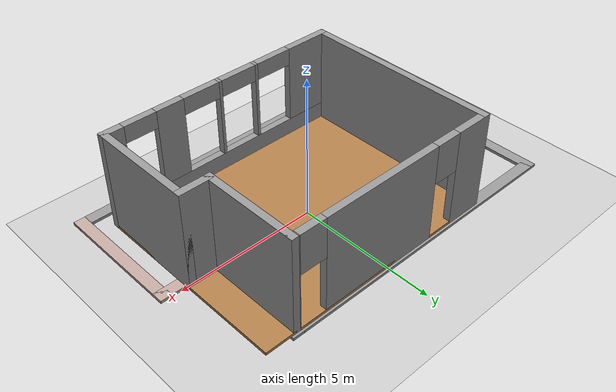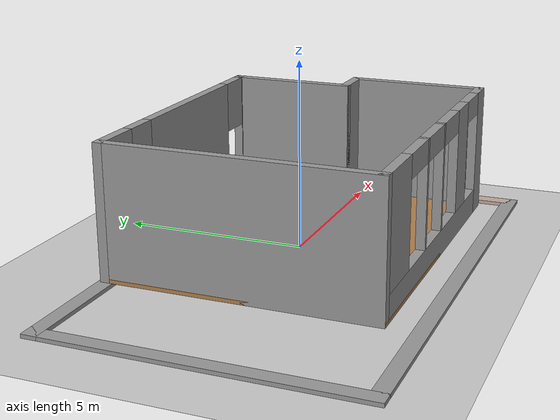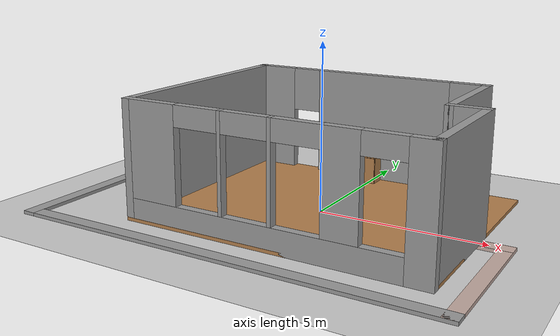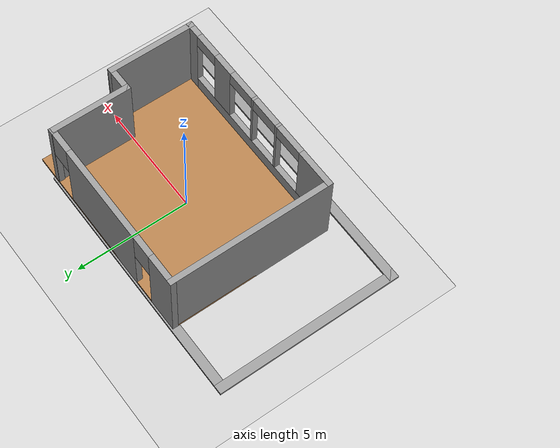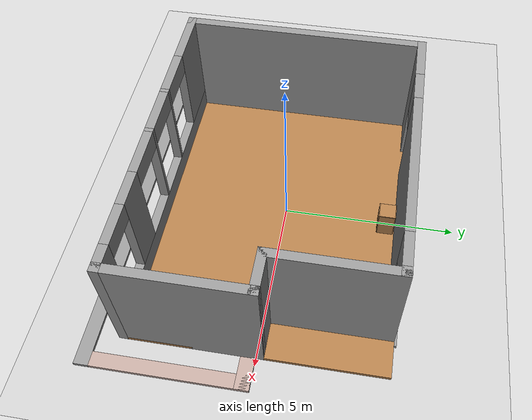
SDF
<sdf version="1.6">
 <world name="default">
  <light name="sun" type="directional">
   <pose>0 0 10 0 -0 0</pose>
   <diffuse>0.8 0.8 0.8 1</diffuse>
   <specular>0.1 0.1 0.1 1</specular>
   <attenuation>
    <range>1000</range>
    <constant>0.9</constant>
    <linear>0.01</linear>
    <quadratic>0.001</quadratic>
   </attenuation>
   <direction>-0.5 0.5 -1</direction>
  </light>
  <model name="ground_plane">
   <static>1</static>
   <link name="link">
    <collision name="collision">
     <geometry><plane><normal>0 0 1</normal><size>100 100</size></plane></geometry>
     <surface><friction><ode><mu>100</mu><mu2>50</mu2></ode></friction></surface>
    </collision>
    <visual name="visual">
     <cast_shadows>0</cast_shadows>
     <geometry><plane><normal>0 0 1</normal><size>100 100</size></plane></geometry>
     <material>
      <script><uri>file://media/materials/scripts/gazebo.material</uri><name>Gazebo/Grey</name></script>
     </material>
    </visual>
   </link>
  </model>
  <gravity>0 0 -9.8</gravity>
  <magnetic_field>6e-06 2.3e-05 -4.2e-05</magnetic_field>
  <atmosphere type="adiabatic"/>
  <physics name="default_physics" default="0" type="ode">
   <max_step_size>0.001</max_step_size>
   <real_time_factor>1</real_time_factor>
   <real_time_update_rate>1000</real_time_update_rate>
  </physics>
  <scene><ambient>0.4 0.4 0.4 1</ambient><background>0.7 0.7 0.7 1</background><shadows>1</shadows></scene>
  <spherical_coordinates>
   <surface_model>EARTH_WGS84</surface_model>
   <latitude_deg>0</latitude_deg>
   <longitude_deg>0</longitude_deg>
   <elevation>0</elevation>
   <heading_deg>0</heading_deg>
  </spherical_coordinates>
  <model name="e1009">
   <pose>-0.79489 -0.534705 0 0 -0 0</pose>
   <link name="Floor_4">
    <collision name="Floor_4_Collision">
     <geometry><box><size>9 7.2 0.1</size></box></geometry>
     <pose>0 0 0.05 0 -0 0</pose>
    </collision>
    <visual name="Floor_4_Visual">
     <pose>0 0 0.05 0 -0 0</pose>
     <geometry><box><size>9 7.2 0.1</size></box></geometry>
     <material>
      <script><uri>file://media/materials/scripts/gazebo.material</uri><name>Gazebo/Wood</name></script>
      <ambient>1 1 1 1</ambient>
     </material>
    </visual>
    <pose>1.125 0.45 0.1 0 -0 0</pose>
   </link>
   <link name="Wall_10">
    <collision name="Wall_10_Collision">
     <geometry><box><size>2.2 0.4 0.1</size></box></geometry>
     <pose>0 0 0.05 0 -0 0</pose>
    </collision>
    <visual name="Wall_10_Visual">
     <pose>0 0 0.05 0 -0 0</pose>
     <geometry><box><size>2.2 0.4 0.1</size></box></geometry>
     <material>
      <script><uri>file://media/materials/scripts/gazebo.material</uri><name>Gazebo/Grey</name></script>
      <ambient>0.760784 0.662745 0.627451 1</ambient>
     </material>
    </visual>
    <pose>5.4 0.325 0 0 -0 0</pose>
   </link>
   <link name="Wall_12">
    <collision name="Wall_12_Collision">
     <geometry><box><size>4.65 0.4 0.1</size></box></geometry>
     <pose>0 0 0.05 0 -0 0</pose>
    </collision>
    <visual name="Wall_12_Visual">
     <pose>0 0 0.05 0 -0 0</pose>
     <geometry><box><size>4.65 0.4 0.1</size></box></geometry>
     <material>
      <script><uri>file://media/materials/scripts/gazebo.material</uri><name>Gazebo/Grey</name></script>
      <ambient>0.760784 0.662745 0.627451 1</ambient>
     </material>
    </visual>
    <pose>6.3 -1.8 0 0 0 -1.5708</pose>
   </link>
   <link name="Wall_14">
    <collision name="Wall_14_Collision">
     <geometry><box><size>13 0.4 0.1</size></box></geometry>
     <pose>0 0 0.05 0 -0 0</pose>
    </collision>
    <visual name="Wall_14_Visual">
     <pose>0 0 0.05 0 -0 0</pose>
     <geometry><box><size>13 0.4 0.1</size></box></geometry>
     <material>
      <script><uri>file://media/materials/scripts/gazebo.material</uri><name>Gazebo/Grey</name></script>
      <ambient>1 1 1 1</ambient>
     </material>
    </visual>
    <pose>0 -3.925 0 0 -0 3.14159</pose>
   </link>
   <link name="Wall_16">
    <collision name="Wall_16_Collision">
     <geometry><box><size>8.25 0.4 0.1</size></box></geometry>
     <pose>0 0 0.05 0 -0 0</pose>
    </collision>
    <visual name="Wall_16_Visual">
     <pose>0 0 0.05 0 -0 0</pose>
     <geometry><box><size>8.25 0.4 0.1</size></box></geometry>
     <material>
      <script><uri>file://media/materials/scripts/gazebo.material</uri><name>Gazebo/Grey</name></script>
      <ambient>1 1 1 1</ambient>
     </material>
    </visual>
    <pose>-6.3 0 0 0 0 -1.5708</pose>
   </link>
   <link name="Wall_2">
    <collision name="Wall_2_Collision">
     <geometry><box><size>11.2 0.4 0.1</size></box></geometry>
     <pose>0 0 0.05 0 -0 0</pose>
    </collision>
    <visual name="Wall_2_Visual">
     <pose>0 0 0.05 0 -0 0</pose>
     <geometry><box><size>11.2 0.4 0.1</size></box></geometry>
     <material>
      <script><uri>file://media/materials/scripts/gazebo.material</uri><name>Gazebo/Grey</name></script>
      <ambient>1 1 1 1</ambient>
     </material>
    </visual>
    <pose>-0.899999 3.925 0 0 -0 3.14159</pose>
   </link>
   <link name="Wall_36">
    <pose>0.625 3.925 0.1 0 -0 3.14159</pose>
    <visual name="Wall_36_Visual_0">
     <pose>-3.8596 0 1.75 0 -0 0</pose>
     <geometry><box><size>0.280803 0.25 3.5</size></box></geometry>
     <material>
      <script><uri>file://media/materials/scripts/gazebo.material</uri><name>Gazebo/Grey</name></script>
      <ambient>1 1 1 1</ambient>
     </material>
    </visual>
    <collision name="Wall_36_Collision_0">
     <geometry><box><size>0.280803 0.25 3.5</size></box></geometry>
     <pose>-3.8596 0 1.75 0 -0 0</pose>
    </collision>
    <visual name="Wall_36_Visual_1">
     <pose>-0.557834 0 1.75 0 -0 0</pose>
     <geometry><box><size>4.42273 0.25 3.5</size></box></geometry>
     <material>
      <script><uri>file://media/materials/scripts/gazebo.material</uri><name>Gazebo/Grey</name></script>
      <ambient>1 1 1 1</ambient>
     </material>
    </visual>
    <collision name="Wall_36_Collision_1">
     <geometry><box><size>4.42273 0.25 3.5</size></box></geometry>
     <pose>-0.557834 0 1.75 0 -0 0</pose>
    </collision>
    <visual name="Wall_36_Visual_2">
     <pose>3.30177 0 1.75 0 -0 0</pose>
     <geometry><box><size>1.39647 0.25 3.5</size></box></geometry>
     <material>
      <script><uri>file://media/materials/scripts/gazebo.material</uri><name>Gazebo/Grey</name></script>
      <ambient>1 1 1 1</ambient>
     </material>
    </visual>
    <collision name="Wall_36_Collision_2">
     <geometry><box><size>1.39647 0.25 3.5</size></box></geometry>
     <pose>3.30177 0 1.75 0 -0 0</pose>
    </collision>
    <visual name="Wall_36_Visual_3">
     <pose>-3.2442 0 2.8 0 -0 0</pose>
     <geometry><box><size>0.95 0.25 1.4</size></box></geometry>
     <material>
      <script><uri>file://media/materials/scripts/gazebo.material</uri><name>Gazebo/Grey</name></script>
      <ambient>1 1 1 1</ambient>
     </material>
    </visual>
    <collision name="Wall_36_Collision_3">
     <geometry><box><size>0.95 0.25 1.4</size></box></geometry>
     <pose>-3.2442 0 2.8 0 -0 0</pose>
    </collision>
    <visual name="Wall_36_Visual_4">
     <pose>2.12853 0 2.8 0 -0 0</pose>
     <geometry><box><size>0.95 0.25 1.4</size></box></geometry>
     <material>
      <script><uri>file://media/materials/scripts/gazebo.material</uri><name>Gazebo/Grey</name></script>
      <ambient>1 1 1 1</ambient>
     </material>
    </visual>
    <collision name="Wall_36_Collision_4">
     <geometry><box><size>0.95 0.25 1.4</size></box></geometry>
     <pose>2.12853 0 2.8 0 -0 0</pose>
    </collision>
   </link>
   <link name="Wall_37">
    <collision name="Wall_37_Collision">
     <geometry><box><size>3.55 0.25 3.5</size></box></geometry>
     <pose>0 0 1.75 0 -0 0</pose>
    </collision>
    <visual name="Wall_37_Visual">
     <pose>0 0 1.75 0 -0 0</pose>
     <geometry><box><size>3.55 0.25 3.5</size></box></geometry>
     <material>
      <script><uri>file://media/materials/scripts/gazebo.material</uri><name>Gazebo/Grey</name></script>
      <ambient>1 1 1 1</ambient>
     </material>
    </visual>
    <pose>4.5 2.275 0.1 0 0 -1.5708</pose>
   </link>
   <link name="Wall_38">
    <collision name="Wall_38_Collision">
     <geometry><box><size>1.25 0.25 3.5</size></box></geometry>
     <pose>0 0 1.75 0 -0 0</pose>
    </collision>
    <visual name="Wall_38_Visual">
     <pose>0 0 1.75 0 -0 0</pose>
     <geometry><box><size>1.25 0.25 3.5</size></box></geometry>
     <material>
      <script><uri>file://media/materials/scripts/gazebo.material</uri><name>Gazebo/Grey</name></script>
      <ambient>1 1 1 1</ambient>
     </material>
    </visual>
    <pose>5 0.625 0.1 0 -0 0</pose>
   </link>
   <link name="Wall_39">
    <collision name="Wall_39_Collision">
     <geometry><box><size>3.9 0.25 3.5</size></box></geometry>
     <pose>0 0 1.75 0 -0 0</pose>
    </collision>
    <visual name="Wall_39_Visual">
     <pose>0 0 1.75 0 -0 0</pose>
     <geometry><box><size>3.9 0.25 3.5</size></box></geometry>
     <material>
      <script><uri>file://media/materials/scripts/gazebo.material</uri><name>Gazebo/Grey</name></script>
      <ambient>1 1 1 1</ambient>
     </material>
    </visual>
    <pose>5.5 -1.2 0.1 0 0 -1.5708</pose>
   </link>
   <link name="Wall_40">
    <pose>1.125 -3.025 0.1 0 -0 3.14159</pose>
    <visual name="Wall_40_Visual_0">
     <pose>-4.12848 0 1.75 0 -0 0</pose>
     <geometry><box><size>0.743048 0.25 3.5</size></box></geometry>
     <material>
      <script><uri>file://media/materials/scripts/gazebo.material</uri><name>Gazebo/Grey</name></script>
      <ambient>1 1 1 1</ambient>
     </material>
    </visual>
    <collision name="Wall_40_Collision_0">
     <geometry><box><size>0.743048 0.25 3.5</size></box></geometry>
     <pose>-4.12848 0 1.75 0 -0 0</pose>
    </collision>
    <visual name="Wall_40_Visual_1">
     <pose>0.371524 0 0.35 0 -0 0</pose>
     <geometry><box><size>8.25695 0.25 0.7</size></box></geometry>
     <material>
      <script><uri>file://media/materials/scripts/gazebo.material</uri><name>Gazebo/Grey</name></script>
      <ambient>1 1 1 1</ambient>
     </material>
    </visual>
    <collision name="Wall_40_Collision_1">
     <geometry><box><size>8.25695 0.25 0.7</size></box></geometry>
     <pose>0.371524 0 0.35 0 -0 0</pose>
    </collision>
    <visual name="Wall_40_Visual_2">
     <pose>-2.10063 0 2.1 0 -0 0</pose>
     <geometry><box><size>1.01263 0.25 2.8</size></box></geometry>
     <material>
      <script><uri>file://media/materials/scripts/gazebo.material</uri><name>Gazebo/Grey</name></script>
      <ambient>1 1 1 1</ambient>
     </material>
    </visual>
    <collision name="Wall_40_Collision_2">
     <geometry><box><size>1.01263 0.25 2.8</size></box></geometry>
     <pose>-2.10063 0 2.1 0 -0 0</pose>
    </collision>
    <visual name="Wall_40_Visual_3">
     <pose>-0.167318 0 2.1 0 -0 0</pose>
     <geometry><box><size>0.113997 0.25 2.8</size></box></geometry>
     <material>
      <script><uri>file://media/materials/scripts/gazebo.material</uri><name>Gazebo/Grey</name></script>
      <ambient>1 1 1 1</ambient>
     </material>
    </visual>
    <collision name="Wall_40_Collision_3">
     <geometry><box><size>0.113997 0.25 2.8</size></box></geometry>
     <pose>-0.167318 0 2.1 0 -0 0</pose>
    </collision>
    <visual name="Wall_40_Visual_4">
     <pose>1.31668 0 2.1 0 -0 0</pose>
     <geometry><box><size>0.113997 0.25 2.8</size></box></geometry>
     <material>
      <script><uri>file://media/materials/scripts/gazebo.material</uri><name>Gazebo/Grey</name></script>
      <ambient>1 1 1 1</ambient>
     </material>
    </visual>
    <collision name="Wall_40_Collision_4">
     <geometry><box><size>0.113997 0.25 2.8</size></box></geometry>
     <pose>1.31668 0 2.1 0 -0 0</pose>
    </collision>
    <visual name="Wall_40_Visual_5">
     <pose>3.62184 0 2.1 0 -0 0</pose>
     <geometry><box><size>1.75632 0.25 2.8</size></box></geometry>
     <material>
      <script><uri>file://media/materials/scripts/gazebo.material</uri><name>Gazebo/Grey</name></script>
      <ambient>1 1 1 1</ambient>
     </material>
    </visual>
    <collision name="Wall_40_Collision_5">
     <geometry><box><size>1.75632 0.25 2.8</size></box></geometry>
     <pose>3.62184 0 2.1 0 -0 0</pose>
    </collision>
    <visual name="Wall_40_Visual_6">
     <pose>-3.18195 0 3.2 0 -0 0</pose>
     <geometry><box><size>1.15 0.25 0.6</size></box></geometry>
     <material>
      <script><uri>file://media/materials/scripts/gazebo.material</uri><name>Gazebo/Grey</name></script>
      <ambient>1 1 1 1</ambient>
     </material>
    </visual>
    <collision name="Wall_40_Collision_6">
     <geometry><box><size>1.15 0.25 0.6</size></box></geometry>
     <pose>-3.18195 0 3.2 0 -0 0</pose>
    </collision>
    <visual name="Wall_40_Visual_7">
     <pose>-0.909316 0 3.2 0 -0 0</pose>
     <geometry><box><size>1.37 0.25 0.6</size></box></geometry>
     <material>
      <script><uri>file://media/materials/scripts/gazebo.material</uri><name>Gazebo/Grey</name></script>
      <ambient>1 1 1 1</ambient>
     </material>
    </visual>
    <collision name="Wall_40_Collision_7">
     <geometry><box><size>1.37 0.25 0.6</size></box></geometry>
     <pose>-0.909316 0 3.2 0 -0 0</pose>
    </collision>
    <visual name="Wall_40_Visual_8">
     <pose>0.574681 0 3.2 0 -0 0</pose>
     <geometry><box><size>1.37 0.25 0.6</size></box></geometry>
     <material>
      <script><uri>file://media/materials/scripts/gazebo.material</uri><name>Gazebo/Grey</name></script>
      <ambient>1 1 1 1</ambient>
     </material>
    </visual>
    <collision name="Wall_40_Collision_8">
     <geometry><box><size>1.37 0.25 0.6</size></box></geometry>
     <pose>0.574681 0 3.2 0 -0 0</pose>
    </collision>
    <visual name="Wall_40_Visual_9">
     <pose>2.05868 0 3.2 0 -0 0</pose>
     <geometry><box><size>1.37 0.25 0.6</size></box></geometry>
     <material>
      <script><uri>file://media/materials/scripts/gazebo.material</uri><name>Gazebo/Grey</name></script>
      <ambient>1 1 1 1</ambient>
     </material>
    </visual>
    <collision name="Wall_40_Collision_9">
     <geometry><box><size>1.37 0.25 0.6</size></box></geometry>
     <pose>2.05868 0 3.2 0 -0 0</pose>
    </collision>
   </link>
   <link name="Wall_41">
    <collision name="Wall_41_Collision">
     <geometry><box><size>7.2 0.25 3.5</size></box></geometry>
     <pose>0 0 1.75 0 -0 0</pose>
    </collision>
    <visual name="Wall_41_Visual">
     <pose>0 0 1.75 0 -0 0</pose>
     <geometry><box><size>7.2 0.25 3.5</size></box></geometry>
     <material>
      <script><uri>file://media/materials/scripts/gazebo.material</uri><name>Gazebo/Grey</name></script>
      <ambient>1 1 1 1</ambient>
     </material>
    </visual>
    <pose>-3.25 0.45 0.1 0 0 -1.5708</pose>
   </link>
   <link name="Wall_8">
    <collision name="Wall_8_Collision">
     <geometry><box><size>4 0.4 0.1</size></box></geometry>
     <pose>0 0 0.05 0 -0 0</pose>
    </collision>
    <visual name="Wall_8_Visual">
     <pose>0 0 0.05 0 -0 0</pose>
     <geometry><box><size>4 0.4 0.1</size></box></geometry>
     <material>
      <script><uri>file://media/materials/scripts/gazebo.material</uri><name>Gazebo/Grey</name></script>
      <ambient>1 1 1 1</ambient>
     </material>
    </visual>
    <pose>4.5 2.125 0 0 0 -1.5708</pose>
   </link>
   <static>1</static>
  </model>
  <model name="cabinet">
   <static>1</static>
   <link name="cabinet_bottom_plate">
    <inertial>
     <pose>0 0 -1 0 -0 0</pose>
     <inertia><ixx>2.05</ixx><ixy>0</ixy><ixz>0</ixz><iyy>2.05</iyy><iyz>0</iyz><izz>2.05</izz></inertia>
     <mass>25</mass>
    </inertial>
    <collision name="cabinet_bottom_plate_geom">
     <pose>0 0 0.01 0 -0 0</pose>
     <geometry><box><size>0.45 0.45 0.02</size></box></geometry>
    </collision>
    <visual name="cabinet_bottom_plate_geom_visual">
     <pose>0 0 0.01 0 -0 0</pose>
     <geometry><box><size>0.45 0.45 0.02</size></box></geometry>
     <material>
      <script><uri>file://media/materials/scripts/gazebo.material</uri><name>Gazebo/Wood</name></script>
     </material>
    </visual>
    <collision name="cabinet_bottom_plate_geom_cabinet_back_plate">
     <pose>0.235 0 0.51 0 -0 0</pose>
     <geometry><box><size>0.02 0.45 1.02</size></box></geometry>
    </collision>
    <visual name="cabinet_bottom_plate_geom_cabinet_back_plate_visual">
     <pose>0.235 0 0.51 0 -0 0</pose>
     <geometry><box><size>0.02 0.45 1.02</size></box></geometry>
     <material>
      <script><uri>file://media/materials/scripts/gazebo.material</uri><name>Gazebo/Wood</name></script>
     </material>
    </visual>
    <collision name="cabinet_bottom_plate_geom_cabinet_left_plate">
     <pose>0 0.235 0.51 0 -0 0</pose>
     <geometry><box><size>0.45 0.02 1.02</size></box></geometry>
    </collision>
    <visual name="cabinet_bottom_plate_geom_cabinet_left_plate_visual">
     <pose>0 0.235 0.51 0 -0 0</pose>
     <geometry><box><size>0.45 0.02 1.02</size></box></geometry>
     <material>
      <script><uri>file://media/materials/scripts/gazebo.material</uri><name>Gazebo/Wood</name></script>
     </material>
    </visual>
    <collision name="cabinet_bottom_plate_geom_cabinet_middle_plate">
     <pose>0 0 0.51 0 -0 0</pose>
     <geometry><box><size>0.45 0.45 0.02</size></box></geometry>
    </collision>
    <visual name="cabinet_bottom_plate_geom_cabinet_middle_plate_visual">
     <pose>0 0 0.51 0 -0 0</pose>
     <geometry><box><size>0.45 0.45 0.02</size></box></geometry>
     <material>
      <script><uri>file://media/materials/scripts/gazebo.material</uri><name>Gazebo/Wood</name></script>
     </material>
    </visual>
    <collision name="cabinet_bottom_plate_geom_cabinet_right_plate">
     <pose>0 -0.235 0.51 0 -0 0</pose>
     <geometry><box><size>0.45 0.02 1.02</size></box></geometry>
    </collision>
    <visual name="cabinet_bottom_plate_geom_cabinet_right_plate_visual">
     <pose>0 -0.235 0.51 0 -0 0</pose>
     <geometry><box><size>0.45 0.02 1.02</size></box></geometry>
     <material>
      <script><uri>file://media/materials/scripts/gazebo.material</uri><name>Gazebo/Wood</name></script>
     </material>
    </visual>
    <collision name="cabinet_bottom_plate_geom_cabinet_top_plate">
     <pose>0 0 1.01 0 -0 0</pose>
     <geometry><box><size>0.45 0.45 0.02</size></box></geometry>
    </collision>
    <visual name="cabinet_bottom_plate_geom_cabinet_top_plate_visual">
     <pose>0 0 1.01 0 -0 0</pose>
     <geometry><box><size>0.45 0.45 0.02</size></box></geometry>
     <material>
      <script><uri>file://media/materials/scripts/gazebo.material</uri><name>Gazebo/Wood</name></script>
     </material>
    </visual>
   </link>
   <pose>0.232897 2.99337 0 0 -0 0</pose>
  </model>
 </world>
</sdf>
